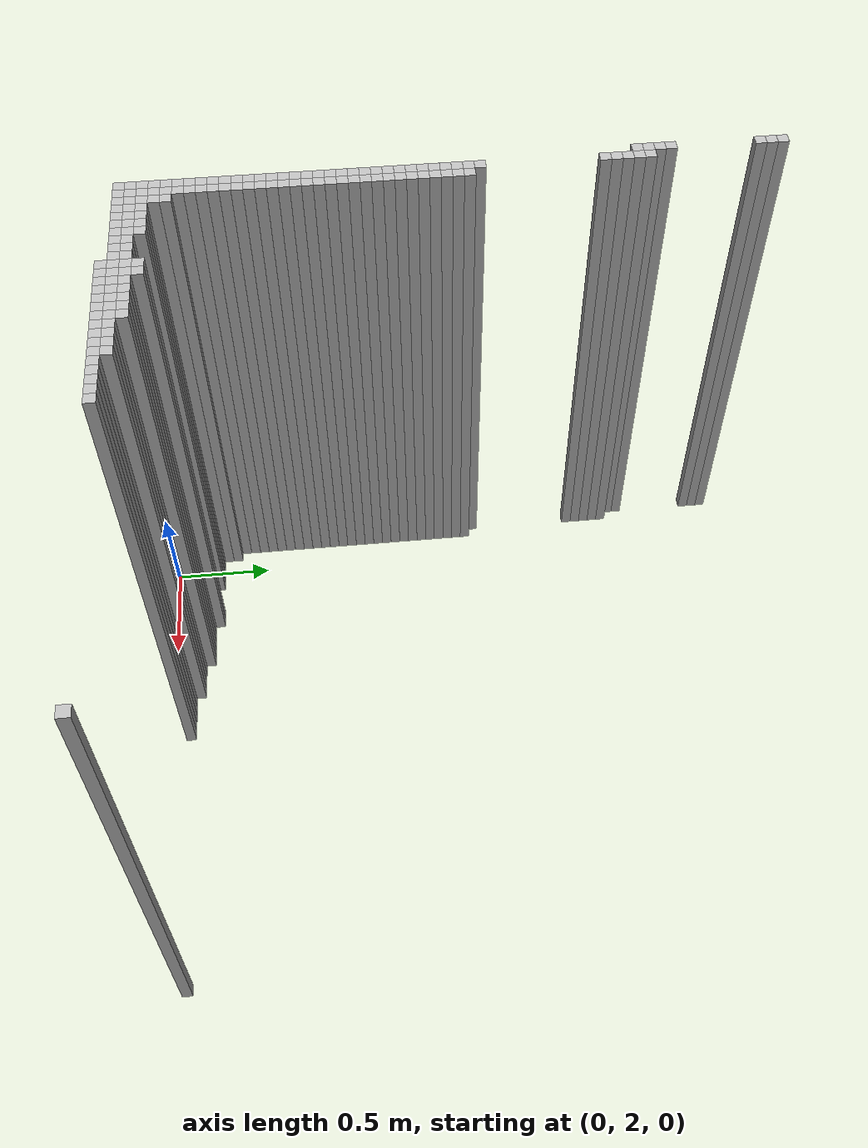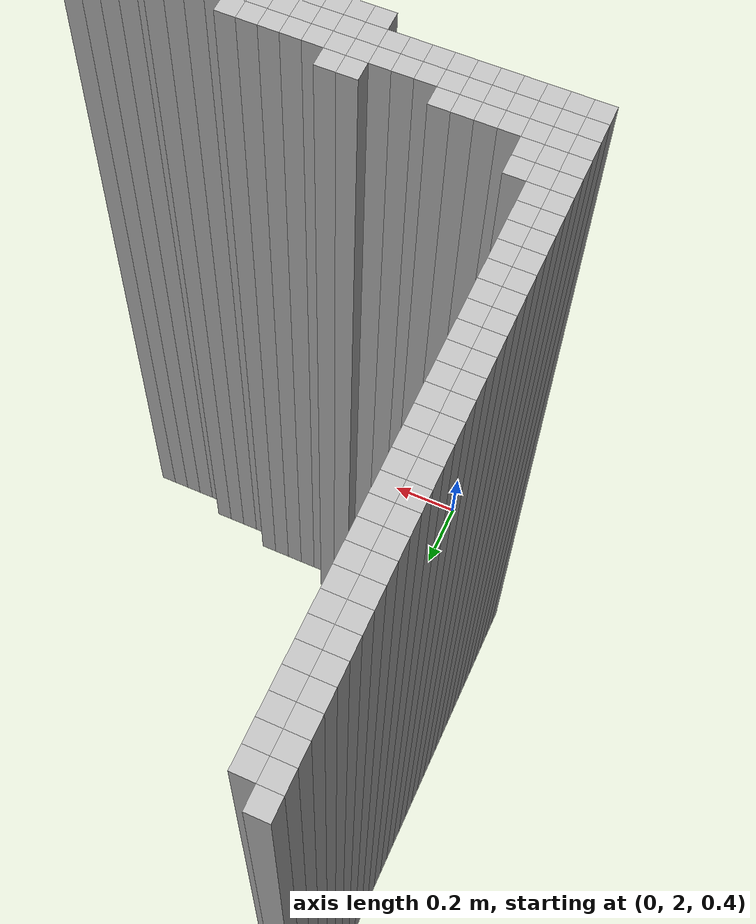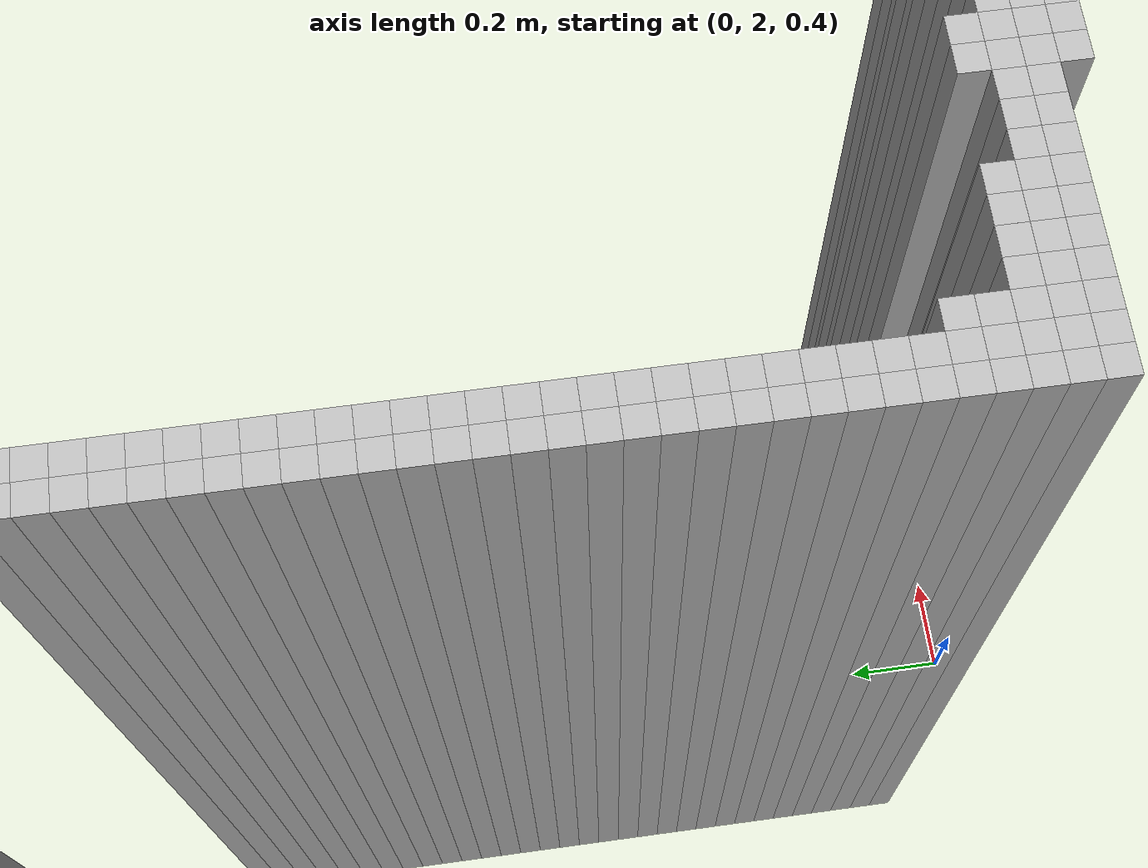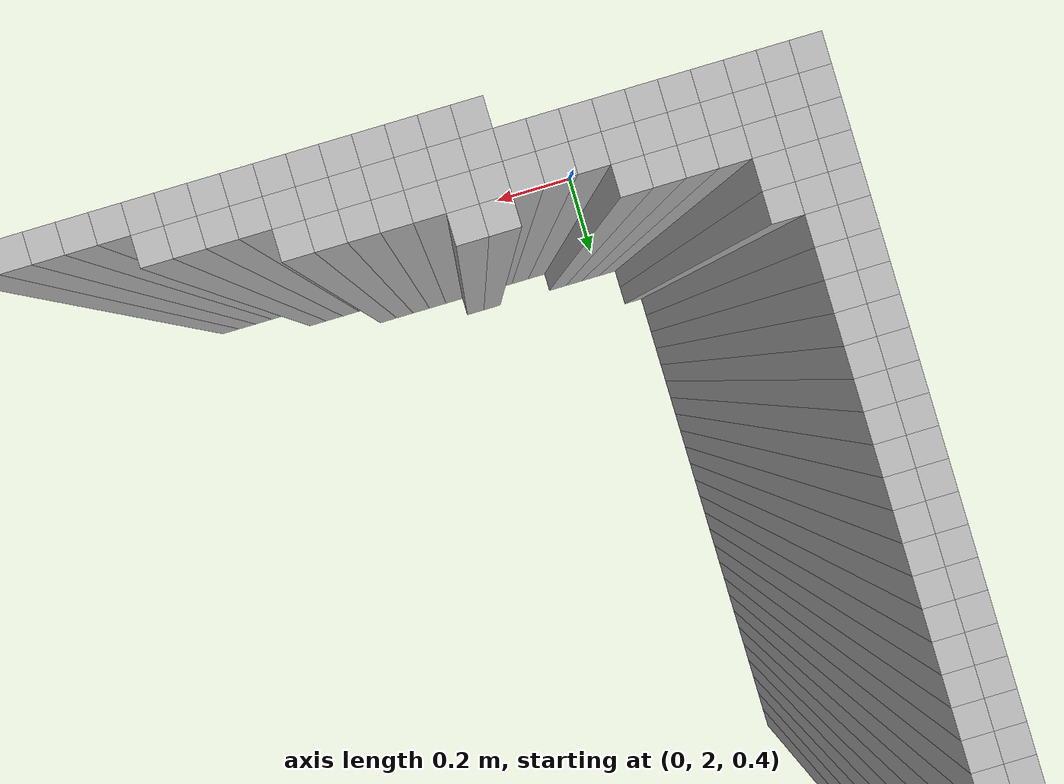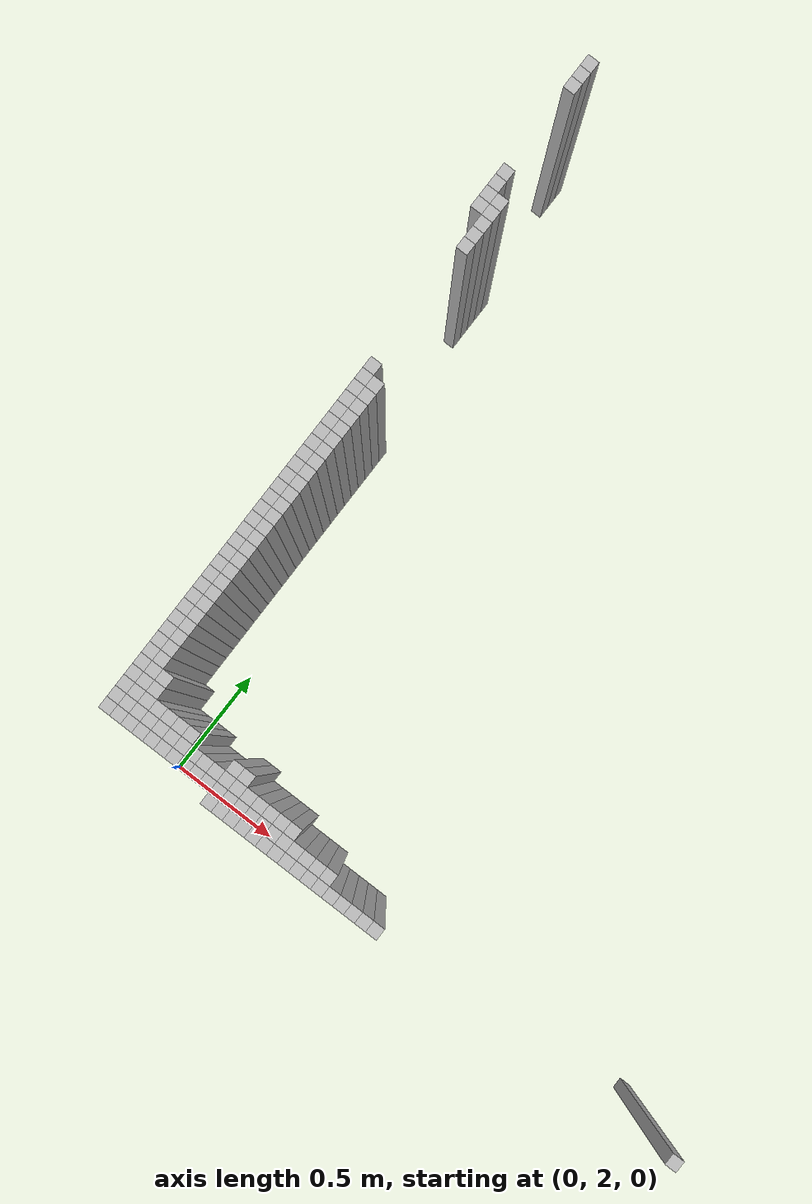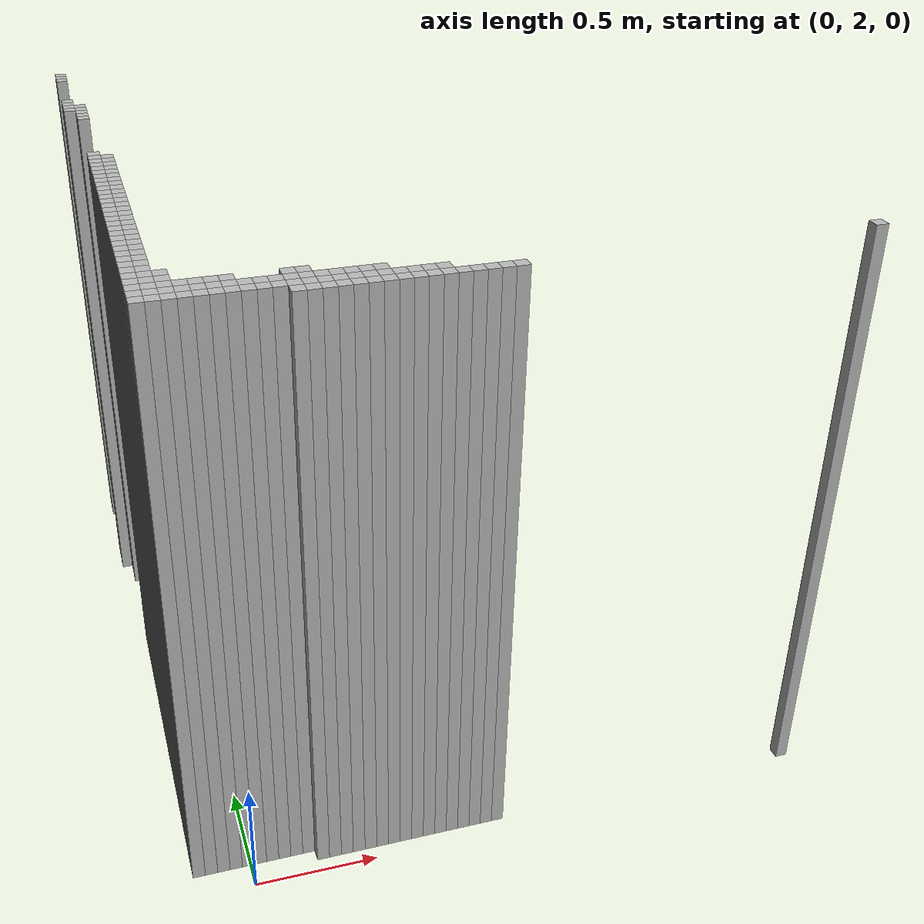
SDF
<sdf version="1.9">
 <world name="map_world">
  <model name="wall_218_53">
   <static>true</static>
   <pose>-0.261 5.030 1.250 0 0 0</pose>
   <link name="link">
    <collision name="collision"><geometry><box><size>0.050 0.050 2.500</size></box></geometry></collision>
    <visual name="visual"><geometry><box><size>0.050 0.050 2.500</size></box></geometry></visual>
   </link>
  </model>
  <model name="wall_218_54">
   <static>true</static>
   <pose>-0.261 4.980 1.250 0 0 0</pose>
   <link name="link">
    <collision name="collision"><geometry><box><size>0.050 0.050 2.500</size></box></geometry></collision>
    <visual name="visual"><geometry><box><size>0.050 0.050 2.500</size></box></geometry></visual>
   </link>
  </model>
  <model name="wall_218_55">
   <static>true</static>
   <pose>-0.261 4.930 1.250 0 0 0</pose>
   <link name="link">
    <collision name="collision"><geometry><box><size>0.050 0.050 2.500</size></box></geometry></collision>
    <visual name="visual"><geometry><box><size>0.050 0.050 2.500</size></box></geometry></visual>
   </link>
  </model>
  <model name="wall_218_63">
   <static>true</static>
   <pose>-0.261 4.530 1.250 0 0 0</pose>
   <link name="link">
    <collision name="collision"><geometry><box><size>0.050 0.050 2.500</size></box></geometry></collision>
    <visual name="visual"><geometry><box><size>0.050 0.050 2.500</size></box></geometry></visual>
   </link>
  </model>
  <model name="wall_218_64">
   <static>true</static>
   <pose>-0.261 4.480 1.250 0 0 0</pose>
   <link name="link">
    <collision name="collision"><geometry><box><size>0.050 0.050 2.500</size></box></geometry></collision>
    <visual name="visual"><geometry><box><size>0.050 0.050 2.500</size></box></geometry></visual>
   </link>
  </model>
  <model name="wall_218_65">
   <static>true</static>
   <pose>-0.261 4.430 1.250 0 0 0</pose>
   <link name="link">
    <collision name="collision"><geometry><box><size>0.050 0.050 2.500</size></box></geometry></collision>
    <visual name="visual"><geometry><box><size>0.050 0.050 2.500</size></box></geometry></visual>
   </link>
  </model>
  <model name="wall_219_65">
   <static>true</static>
   <pose>-0.211 4.430 1.250 0 0 0</pose>
   <link name="link">
    <collision name="collision"><geometry><box><size>0.050 0.050 2.500</size></box></geometry></collision>
    <visual name="visual"><geometry><box><size>0.050 0.050 2.500</size></box></geometry></visual>
   </link>
  </model>
  <model name="wall_218_66">
   <static>true</static>
   <pose>-0.261 4.380 1.250 0 0 0</pose>
   <link name="link">
    <collision name="collision"><geometry><box><size>0.050 0.050 2.500</size></box></geometry></collision>
    <visual name="visual"><geometry><box><size>0.050 0.050 2.500</size></box></geometry></visual>
   </link>
  </model>
  <model name="wall_219_66">
   <static>true</static>
   <pose>-0.211 4.380 1.250 0 0 0</pose>
   <link name="link">
    <collision name="collision"><geometry><box><size>0.050 0.050 2.500</size></box></geometry></collision>
    <visual name="visual"><geometry><box><size>0.050 0.050 2.500</size></box></geometry></visual>
   </link>
  </model>
  <model name="wall_219_67">
   <static>true</static>
   <pose>-0.211 4.330 1.250 0 0 0</pose>
   <link name="link">
    <collision name="collision"><geometry><box><size>0.050 0.050 2.500</size></box></geometry></collision>
    <visual name="visual"><geometry><box><size>0.050 0.050 2.500</size></box></geometry></visual>
   </link>
  </model>
  <model name="wall_219_68">
   <static>true</static>
   <pose>-0.211 4.280 1.250 0 0 0</pose>
   <link name="link">
    <collision name="collision"><geometry><box><size>0.050 0.050 2.500</size></box></geometry></collision>
    <visual name="visual"><geometry><box><size>0.050 0.050 2.500</size></box></geometry></visual>
   </link>
  </model>
  <model name="wall_219_69">
   <static>true</static>
   <pose>-0.211 4.230 1.250 0 0 0</pose>
   <link name="link">
    <collision name="collision"><geometry><box><size>0.050 0.050 2.500</size></box></geometry></collision>
    <visual name="visual"><geometry><box><size>0.050 0.050 2.500</size></box></geometry></visual>
   </link>
  </model>
  <model name="wall_219_80">
   <static>true</static>
   <pose>-0.211 3.680 1.250 0 0 0</pose>
   <link name="link">
    <collision name="collision"><geometry><box><size>0.050 0.050 2.500</size></box></geometry></collision>
    <visual name="visual"><geometry><box><size>0.050 0.050 2.500</size></box></geometry></visual>
   </link>
  </model>
  <model name="wall_219_81">
   <static>true</static>
   <pose>-0.211 3.630 1.250 0 0 0</pose>
   <link name="link">
    <collision name="collision"><geometry><box><size>0.050 0.050 2.500</size></box></geometry></collision>
    <visual name="visual"><geometry><box><size>0.050 0.050 2.500</size></box></geometry></visual>
   </link>
  </model>
  <model name="wall_220_81">
   <static>true</static>
   <pose>-0.161 3.630 1.250 0 0 0</pose>
   <link name="link">
    <collision name="collision"><geometry><box><size>0.050 0.050 2.500</size></box></geometry></collision>
    <visual name="visual"><geometry><box><size>0.050 0.050 2.500</size></box></geometry></visual>
   </link>
  </model>
  <model name="wall_219_82">
   <static>true</static>
   <pose>-0.211 3.580 1.250 0 0 0</pose>
   <link name="link">
    <collision name="collision"><geometry><box><size>0.050 0.050 2.500</size></box></geometry></collision>
    <visual name="visual"><geometry><box><size>0.050 0.050 2.500</size></box></geometry></visual>
   </link>
  </model>
  <model name="wall_220_82">
   <static>true</static>
   <pose>-0.161 3.580 1.250 0 0 0</pose>
   <link name="link">
    <collision name="collision"><geometry><box><size>0.050 0.050 2.500</size></box></geometry></collision>
    <visual name="visual"><geometry><box><size>0.050 0.050 2.500</size></box></geometry></visual>
   </link>
  </model>
  <model name="wall_219_83">
   <static>true</static>
   <pose>-0.211 3.530 1.250 0 0 0</pose>
   <link name="link">
    <collision name="collision"><geometry><box><size>0.050 0.050 2.500</size></box></geometry></collision>
    <visual name="visual"><geometry><box><size>0.050 0.050 2.500</size></box></geometry></visual>
   </link>
  </model>
  <model name="wall_220_83">
   <static>true</static>
   <pose>-0.161 3.530 1.250 0 0 0</pose>
   <link name="link">
    <collision name="collision"><geometry><box><size>0.050 0.050 2.500</size></box></geometry></collision>
    <visual name="visual"><geometry><box><size>0.050 0.050 2.500</size></box></geometry></visual>
   </link>
  </model>
  <model name="wall_219_84">
   <static>true</static>
   <pose>-0.211 3.480 1.250 0 0 0</pose>
   <link name="link">
    <collision name="collision"><geometry><box><size>0.050 0.050 2.500</size></box></geometry></collision>
    <visual name="visual"><geometry><box><size>0.050 0.050 2.500</size></box></geometry></visual>
   </link>
  </model>
  <model name="wall_220_84">
   <static>true</static>
   <pose>-0.161 3.480 1.250 0 0 0</pose>
   <link name="link">
    <collision name="collision"><geometry><box><size>0.050 0.050 2.500</size></box></geometry></collision>
    <visual name="visual"><geometry><box><size>0.050 0.050 2.500</size></box></geometry></visual>
   </link>
  </model>
  <model name="wall_219_85">
   <static>true</static>
   <pose>-0.211 3.430 1.250 0 0 0</pose>
   <link name="link">
    <collision name="collision"><geometry><box><size>0.050 0.050 2.500</size></box></geometry></collision>
    <visual name="visual"><geometry><box><size>0.050 0.050 2.500</size></box></geometry></visual>
   </link>
  </model>
  <model name="wall_220_85">
   <static>true</static>
   <pose>-0.161 3.430 1.250 0 0 0</pose>
   <link name="link">
    <collision name="collision"><geometry><box><size>0.050 0.050 2.500</size></box></geometry></collision>
    <visual name="visual"><geometry><box><size>0.050 0.050 2.500</size></box></geometry></visual>
   </link>
  </model>
  <model name="wall_219_86">
   <static>true</static>
   <pose>-0.211 3.380 1.250 0 0 0</pose>
   <link name="link">
    <collision name="collision"><geometry><box><size>0.050 0.050 2.500</size></box></geometry></collision>
    <visual name="visual"><geometry><box><size>0.050 0.050 2.500</size></box></geometry></visual>
   </link>
  </model>
  <model name="wall_220_86">
   <static>true</static>
   <pose>-0.161 3.380 1.250 0 0 0</pose>
   <link name="link">
    <collision name="collision"><geometry><box><size>0.050 0.050 2.500</size></box></geometry></collision>
    <visual name="visual"><geometry><box><size>0.050 0.050 2.500</size></box></geometry></visual>
   </link>
  </model>
  <model name="wall_219_87">
   <static>true</static>
   <pose>-0.211 3.330 1.250 0 0 0</pose>
   <link name="link">
    <collision name="collision"><geometry><box><size>0.050 0.050 2.500</size></box></geometry></collision>
    <visual name="visual"><geometry><box><size>0.050 0.050 2.500</size></box></geometry></visual>
   </link>
  </model>
  <model name="wall_220_87">
   <static>true</static>
   <pose>-0.161 3.330 1.250 0 0 0</pose>
   <link name="link">
    <collision name="collision"><geometry><box><size>0.050 0.050 2.500</size></box></geometry></collision>
    <visual name="visual"><geometry><box><size>0.050 0.050 2.500</size></box></geometry></visual>
   </link>
  </model>
  <model name="wall_219_88">
   <static>true</static>
   <pose>-0.211 3.280 1.250 0 0 0</pose>
   <link name="link">
    <collision name="collision"><geometry><box><size>0.050 0.050 2.500</size></box></geometry></collision>
    <visual name="visual"><geometry><box><size>0.050 0.050 2.500</size></box></geometry></visual>
   </link>
  </model>
  <model name="wall_220_88">
   <static>true</static>
   <pose>-0.161 3.280 1.250 0 0 0</pose>
   <link name="link">
    <collision name="collision"><geometry><box><size>0.050 0.050 2.500</size></box></geometry></collision>
    <visual name="visual"><geometry><box><size>0.050 0.050 2.500</size></box></geometry></visual>
   </link>
  </model>
  <model name="wall_219_89">
   <static>true</static>
   <pose>-0.211 3.230 1.250 0 0 0</pose>
   <link name="link">
    <collision name="collision"><geometry><box><size>0.050 0.050 2.500</size></box></geometry></collision>
    <visual name="visual"><geometry><box><size>0.050 0.050 2.500</size></box></geometry></visual>
   </link>
  </model>
  <model name="wall_220_89">
   <static>true</static>
   <pose>-0.161 3.230 1.250 0 0 0</pose>
   <link name="link">
    <collision name="collision"><geometry><box><size>0.050 0.050 2.500</size></box></geometry></collision>
    <visual name="visual"><geometry><box><size>0.050 0.050 2.500</size></box></geometry></visual>
   </link>
  </model>
  <model name="wall_219_90">
   <static>true</static>
   <pose>-0.211 3.180 1.250 0 0 0</pose>
   <link name="link">
    <collision name="collision"><geometry><box><size>0.050 0.050 2.500</size></box></geometry></collision>
    <visual name="visual"><geometry><box><size>0.050 0.050 2.500</size></box></geometry></visual>
   </link>
  </model>
  <model name="wall_220_90">
   <static>true</static>
   <pose>-0.161 3.180 1.250 0 0 0</pose>
   <link name="link">
    <collision name="collision"><geometry><box><size>0.050 0.050 2.500</size></box></geometry></collision>
    <visual name="visual"><geometry><box><size>0.050 0.050 2.500</size></box></geometry></visual>
   </link>
  </model>
  <model name="wall_219_91">
   <static>true</static>
   <pose>-0.211 3.130 1.250 0 0 0</pose>
   <link name="link">
    <collision name="collision"><geometry><box><size>0.050 0.050 2.500</size></box></geometry></collision>
    <visual name="visual"><geometry><box><size>0.050 0.050 2.500</size></box></geometry></visual>
   </link>
  </model>
  <model name="wall_220_91">
   <static>true</static>
   <pose>-0.161 3.130 1.250 0 0 0</pose>
   <link name="link">
    <collision name="collision"><geometry><box><size>0.050 0.050 2.500</size></box></geometry></collision>
    <visual name="visual"><geometry><box><size>0.050 0.050 2.500</size></box></geometry></visual>
   </link>
  </model>
  <model name="wall_219_92">
   <static>true</static>
   <pose>-0.211 3.080 1.250 0 0 0</pose>
   <link name="link">
    <collision name="collision"><geometry><box><size>0.050 0.050 2.500</size></box></geometry></collision>
    <visual name="visual"><geometry><box><size>0.050 0.050 2.500</size></box></geometry></visual>
   </link>
  </model>
  <model name="wall_220_92">
   <static>true</static>
   <pose>-0.161 3.080 1.250 0 0 0</pose>
   <link name="link">
    <collision name="collision"><geometry><box><size>0.050 0.050 2.500</size></box></geometry></collision>
    <visual name="visual"><geometry><box><size>0.050 0.050 2.500</size></box></geometry></visual>
   </link>
  </model>
  <model name="wall_219_93">
   <static>true</static>
   <pose>-0.211 3.030 1.250 0 0 0</pose>
   <link name="link">
    <collision name="collision"><geometry><box><size>0.050 0.050 2.500</size></box></geometry></collision>
    <visual name="visual"><geometry><box><size>0.050 0.050 2.500</size></box></geometry></visual>
   </link>
  </model>
  <model name="wall_220_93">
   <static>true</static>
   <pose>-0.161 3.030 1.250 0 0 0</pose>
   <link name="link">
    <collision name="collision"><geometry><box><size>0.050 0.050 2.500</size></box></geometry></collision>
    <visual name="visual"><geometry><box><size>0.050 0.050 2.500</size></box></geometry></visual>
   </link>
  </model>
  <model name="wall_219_94">
   <static>true</static>
   <pose>-0.211 2.980 1.250 0 0 0</pose>
   <link name="link">
    <collision name="collision"><geometry><box><size>0.050 0.050 2.500</size></box></geometry></collision>
    <visual name="visual"><geometry><box><size>0.050 0.050 2.500</size></box></geometry></visual>
   </link>
  </model>
  <model name="wall_220_94">
   <static>true</static>
   <pose>-0.161 2.980 1.250 0 0 0</pose>
   <link name="link">
    <collision name="collision"><geometry><box><size>0.050 0.050 2.500</size></box></geometry></collision>
    <visual name="visual"><geometry><box><size>0.050 0.050 2.500</size></box></geometry></visual>
   </link>
  </model>
  <model name="wall_219_95">
   <static>true</static>
   <pose>-0.211 2.930 1.250 0 0 0</pose>
   <link name="link">
    <collision name="collision"><geometry><box><size>0.050 0.050 2.500</size></box></geometry></collision>
    <visual name="visual"><geometry><box><size>0.050 0.050 2.500</size></box></geometry></visual>
   </link>
  </model>
  <model name="wall_220_95">
   <static>true</static>
   <pose>-0.161 2.930 1.250 0 0 0</pose>
   <link name="link">
    <collision name="collision"><geometry><box><size>0.050 0.050 2.500</size></box></geometry></collision>
    <visual name="visual"><geometry><box><size>0.050 0.050 2.500</size></box></geometry></visual>
   </link>
  </model>
  <model name="wall_219_96">
   <static>true</static>
   <pose>-0.211 2.880 1.250 0 0 0</pose>
   <link name="link">
    <collision name="collision"><geometry><box><size>0.050 0.050 2.500</size></box></geometry></collision>
    <visual name="visual"><geometry><box><size>0.050 0.050 2.500</size></box></geometry></visual>
   </link>
  </model>
  <model name="wall_220_96">
   <static>true</static>
   <pose>-0.161 2.880 1.250 0 0 0</pose>
   <link name="link">
    <collision name="collision"><geometry><box><size>0.050 0.050 2.500</size></box></geometry></collision>
    <visual name="visual"><geometry><box><size>0.050 0.050 2.500</size></box></geometry></visual>
   </link>
  </model>
  <model name="wall_219_97">
   <static>true</static>
   <pose>-0.211 2.830 1.250 0 0 0</pose>
   <link name="link">
    <collision name="collision"><geometry><box><size>0.050 0.050 2.500</size></box></geometry></collision>
    <visual name="visual"><geometry><box><size>0.050 0.050 2.500</size></box></geometry></visual>
   </link>
  </model>
  <model name="wall_220_97">
   <static>true</static>
   <pose>-0.161 2.830 1.250 0 0 0</pose>
   <link name="link">
    <collision name="collision"><geometry><box><size>0.050 0.050 2.500</size></box></geometry></collision>
    <visual name="visual"><geometry><box><size>0.050 0.050 2.500</size></box></geometry></visual>
   </link>
  </model>
  <model name="wall_219_98">
   <static>true</static>
   <pose>-0.211 2.780 1.250 0 0 0</pose>
   <link name="link">
    <collision name="collision"><geometry><box><size>0.050 0.050 2.500</size></box></geometry></collision>
    <visual name="visual"><geometry><box><size>0.050 0.050 2.500</size></box></geometry></visual>
   </link>
  </model>
  <model name="wall_220_98">
   <static>true</static>
   <pose>-0.161 2.780 1.250 0 0 0</pose>
   <link name="link">
    <collision name="collision"><geometry><box><size>0.050 0.050 2.500</size></box></geometry></collision>
    <visual name="visual"><geometry><box><size>0.050 0.050 2.500</size></box></geometry></visual>
   </link>
  </model>
  <model name="wall_219_99">
   <static>true</static>
   <pose>-0.211 2.730 1.250 0 0 0</pose>
   <link name="link">
    <collision name="collision"><geometry><box><size>0.050 0.050 2.500</size></box></geometry></collision>
    <visual name="visual"><geometry><box><size>0.050 0.050 2.500</size></box></geometry></visual>
   </link>
  </model>
  <model name="wall_220_99">
   <static>true</static>
   <pose>-0.161 2.730 1.250 0 0 0</pose>
   <link name="link">
    <collision name="collision"><geometry><box><size>0.050 0.050 2.500</size></box></geometry></collision>
    <visual name="visual"><geometry><box><size>0.050 0.050 2.500</size></box></geometry></visual>
   </link>
  </model>
  <model name="wall_219_100">
   <static>true</static>
   <pose>-0.211 2.680 1.250 0 0 0</pose>
   <link name="link">
    <collision name="collision"><geometry><box><size>0.050 0.050 2.500</size></box></geometry></collision>
    <visual name="visual"><geometry><box><size>0.050 0.050 2.500</size></box></geometry></visual>
   </link>
  </model>
  <model name="wall_220_100">
   <static>true</static>
   <pose>-0.161 2.680 1.250 0 0 0</pose>
   <link name="link">
    <collision name="collision"><geometry><box><size>0.050 0.050 2.500</size></box></geometry></collision>
    <visual name="visual"><geometry><box><size>0.050 0.050 2.500</size></box></geometry></visual>
   </link>
  </model>
  <model name="wall_219_101">
   <static>true</static>
   <pose>-0.211 2.630 1.250 0 0 0</pose>
   <link name="link">
    <collision name="collision"><geometry><box><size>0.050 0.050 2.500</size></box></geometry></collision>
    <visual name="visual"><geometry><box><size>0.050 0.050 2.500</size></box></geometry></visual>
   </link>
  </model>
  <model name="wall_220_101">
   <static>true</static>
   <pose>-0.161 2.630 1.250 0 0 0</pose>
   <link name="link">
    <collision name="collision"><geometry><box><size>0.050 0.050 2.500</size></box></geometry></collision>
    <visual name="visual"><geometry><box><size>0.050 0.050 2.500</size></box></geometry></visual>
   </link>
  </model>
  <model name="wall_219_102">
   <static>true</static>
   <pose>-0.211 2.580 1.250 0 0 0</pose>
   <link name="link">
    <collision name="collision"><geometry><box><size>0.050 0.050 2.500</size></box></geometry></collision>
    <visual name="visual"><geometry><box><size>0.050 0.050 2.500</size></box></geometry></visual>
   </link>
  </model>
  <model name="wall_220_102">
   <static>true</static>
   <pose>-0.161 2.580 1.250 0 0 0</pose>
   <link name="link">
    <collision name="collision"><geometry><box><size>0.050 0.050 2.500</size></box></geometry></collision>
    <visual name="visual"><geometry><box><size>0.050 0.050 2.500</size></box></geometry></visual>
   </link>
  </model>
  <model name="wall_219_103">
   <static>true</static>
   <pose>-0.211 2.530 1.250 0 0 0</pose>
   <link name="link">
    <collision name="collision"><geometry><box><size>0.050 0.050 2.500</size></box></geometry></collision>
    <visual name="visual"><geometry><box><size>0.050 0.050 2.500</size></box></geometry></visual>
   </link>
  </model>
  <model name="wall_220_103">
   <static>true</static>
   <pose>-0.161 2.530 1.250 0 0 0</pose>
   <link name="link">
    <collision name="collision"><geometry><box><size>0.050 0.050 2.500</size></box></geometry></collision>
    <visual name="visual"><geometry><box><size>0.050 0.050 2.500</size></box></geometry></visual>
   </link>
  </model>
  <model name="wall_219_104">
   <static>true</static>
   <pose>-0.211 2.480 1.250 0 0 0</pose>
   <link name="link">
    <collision name="collision"><geometry><box><size>0.050 0.050 2.500</size></box></geometry></collision>
    <visual name="visual"><geometry><box><size>0.050 0.050 2.500</size></box></geometry></visual>
   </link>
  </model>
  <model name="wall_220_104">
   <static>true</static>
   <pose>-0.161 2.480 1.250 0 0 0</pose>
   <link name="link">
    <collision name="collision"><geometry><box><size>0.050 0.050 2.500</size></box></geometry></collision>
    <visual name="visual"><geometry><box><size>0.050 0.050 2.500</size></box></geometry></visual>
   </link>
  </model>
  <model name="wall_219_105">
   <static>true</static>
   <pose>-0.211 2.430 1.250 0 0 0</pose>
   <link name="link">
    <collision name="collision"><geometry><box><size>0.050 0.050 2.500</size></box></geometry></collision>
    <visual name="visual"><geometry><box><size>0.050 0.050 2.500</size></box></geometry></visual>
   </link>
  </model>
  <model name="wall_220_105">
   <static>true</static>
   <pose>-0.161 2.430 1.250 0 0 0</pose>
   <link name="link">
    <collision name="collision"><geometry><box><size>0.050 0.050 2.500</size></box></geometry></collision>
    <visual name="visual"><geometry><box><size>0.050 0.050 2.500</size></box></geometry></visual>
   </link>
  </model>
  <model name="wall_219_106">
   <static>true</static>
   <pose>-0.211 2.380 1.250 0 0 0</pose>
   <link name="link">
    <collision name="collision"><geometry><box><size>0.050 0.050 2.500</size></box></geometry></collision>
    <visual name="visual"><geometry><box><size>0.050 0.050 2.500</size></box></geometry></visual>
   </link>
  </model>
  <model name="wall_220_106">
   <static>true</static>
   <pose>-0.161 2.380 1.250 0 0 0</pose>
   <link name="link">
    <collision name="collision"><geometry><box><size>0.050 0.050 2.500</size></box></geometry></collision>
    <visual name="visual"><geometry><box><size>0.050 0.050 2.500</size></box></geometry></visual>
   </link>
  </model>
  <model name="wall_219_107">
   <static>true</static>
   <pose>-0.211 2.330 1.250 0 0 0</pose>
   <link name="link">
    <collision name="collision"><geometry><box><size>0.050 0.050 2.500</size></box></geometry></collision>
    <visual name="visual"><geometry><box><size>0.050 0.050 2.500</size></box></geometry></visual>
   </link>
  </model>
  <model name="wall_220_107">
   <static>true</static>
   <pose>-0.161 2.330 1.250 0 0 0</pose>
   <link name="link">
    <collision name="collision"><geometry><box><size>0.050 0.050 2.500</size></box></geometry></collision>
    <visual name="visual"><geometry><box><size>0.050 0.050 2.500</size></box></geometry></visual>
   </link>
  </model>
  <model name="wall_221_107">
   <static>true</static>
   <pose>-0.111 2.330 1.250 0 0 0</pose>
   <link name="link">
    <collision name="collision"><geometry><box><size>0.050 0.050 2.500</size></box></geometry></collision>
    <visual name="visual"><geometry><box><size>0.050 0.050 2.500</size></box></geometry></visual>
   </link>
  </model>
  <model name="wall_219_108">
   <static>true</static>
   <pose>-0.211 2.280 1.250 0 0 0</pose>
   <link name="link">
    <collision name="collision"><geometry><box><size>0.050 0.050 2.500</size></box></geometry></collision>
    <visual name="visual"><geometry><box><size>0.050 0.050 2.500</size></box></geometry></visual>
   </link>
  </model>
  <model name="wall_220_108">
   <static>true</static>
   <pose>-0.161 2.280 1.250 0 0 0</pose>
   <link name="link">
    <collision name="collision"><geometry><box><size>0.050 0.050 2.500</size></box></geometry></collision>
    <visual name="visual"><geometry><box><size>0.050 0.050 2.500</size></box></geometry></visual>
   </link>
  </model>
  <model name="wall_221_108">
   <static>true</static>
   <pose>-0.111 2.280 1.250 0 0 0</pose>
   <link name="link">
    <collision name="collision"><geometry><box><size>0.050 0.050 2.500</size></box></geometry></collision>
    <visual name="visual"><geometry><box><size>0.050 0.050 2.500</size></box></geometry></visual>
   </link>
  </model>
  <model name="wall_219_109">
   <static>true</static>
   <pose>-0.211 2.230 1.250 0 0 0</pose>
   <link name="link">
    <collision name="collision"><geometry><box><size>0.050 0.050 2.500</size></box></geometry></collision>
    <visual name="visual"><geometry><box><size>0.050 0.050 2.500</size></box></geometry></visual>
   </link>
  </model>
  <model name="wall_220_109">
   <static>true</static>
   <pose>-0.161 2.230 1.250 0 0 0</pose>
   <link name="link">
    <collision name="collision"><geometry><box><size>0.050 0.050 2.500</size></box></geometry></collision>
    <visual name="visual"><geometry><box><size>0.050 0.050 2.500</size></box></geometry></visual>
   </link>
  </model>
  <model name="wall_221_109">
   <static>true</static>
   <pose>-0.111 2.230 1.250 0 0 0</pose>
   <link name="link">
    <collision name="collision"><geometry><box><size>0.050 0.050 2.500</size></box></geometry></collision>
    <visual name="visual"><geometry><box><size>0.050 0.050 2.500</size></box></geometry></visual>
   </link>
  </model>
  <model name="wall_222_109">
   <static>true</static>
   <pose>-0.061 2.230 1.250 0 0 0</pose>
   <link name="link">
    <collision name="collision"><geometry><box><size>0.050 0.050 2.500</size></box></geometry></collision>
    <visual name="visual"><geometry><box><size>0.050 0.050 2.500</size></box></geometry></visual>
   </link>
  </model>
  <model name="wall_223_109">
   <static>true</static>
   <pose>-0.011 2.230 1.250 0 0 0</pose>
   <link name="link">
    <collision name="collision"><geometry><box><size>0.050 0.050 2.500</size></box></geometry></collision>
    <visual name="visual"><geometry><box><size>0.050 0.050 2.500</size></box></geometry></visual>
   </link>
  </model>
  <model name="wall_224_109">
   <static>true</static>
   <pose>0.039 2.230 1.250 0 0 0</pose>
   <link name="link">
    <collision name="collision"><geometry><box><size>0.050 0.050 2.500</size></box></geometry></collision>
    <visual name="visual"><geometry><box><size>0.050 0.050 2.500</size></box></geometry></visual>
   </link>
  </model>
  <model name="wall_225_109">
   <static>true</static>
   <pose>0.089 2.230 1.250 0 0 0</pose>
   <link name="link">
    <collision name="collision"><geometry><box><size>0.050 0.050 2.500</size></box></geometry></collision>
    <visual name="visual"><geometry><box><size>0.050 0.050 2.500</size></box></geometry></visual>
   </link>
  </model>
  <model name="wall_229_109">
   <static>true</static>
   <pose>0.289 2.230 1.250 0 0 0</pose>
   <link name="link">
    <collision name="collision"><geometry><box><size>0.050 0.050 2.500</size></box></geometry></collision>
    <visual name="visual"><geometry><box><size>0.050 0.050 2.500</size></box></geometry></visual>
   </link>
  </model>
  <model name="wall_230_109">
   <static>true</static>
   <pose>0.339 2.230 1.250 0 0 0</pose>
   <link name="link">
    <collision name="collision"><geometry><box><size>0.050 0.050 2.500</size></box></geometry></collision>
    <visual name="visual"><geometry><box><size>0.050 0.050 2.500</size></box></geometry></visual>
   </link>
  </model>
  <model name="wall_219_110">
   <static>true</static>
   <pose>-0.211 2.180 1.250 0 0 0</pose>
   <link name="link">
    <collision name="collision"><geometry><box><size>0.050 0.050 2.500</size></box></geometry></collision>
    <visual name="visual"><geometry><box><size>0.050 0.050 2.500</size></box></geometry></visual>
   </link>
  </model>
  <model name="wall_220_110">
   <static>true</static>
   <pose>-0.161 2.180 1.250 0 0 0</pose>
   <link name="link">
    <collision name="collision"><geometry><box><size>0.050 0.050 2.500</size></box></geometry></collision>
    <visual name="visual"><geometry><box><size>0.050 0.050 2.500</size></box></geometry></visual>
   </link>
  </model>
  <model name="wall_221_110">
   <static>true</static>
   <pose>-0.111 2.180 1.250 0 0 0</pose>
   <link name="link">
    <collision name="collision"><geometry><box><size>0.050 0.050 2.500</size></box></geometry></collision>
    <visual name="visual"><geometry><box><size>0.050 0.050 2.500</size></box></geometry></visual>
   </link>
  </model>
  <model name="wall_222_110">
   <static>true</static>
   <pose>-0.061 2.180 1.250 0 0 0</pose>
   <link name="link">
    <collision name="collision"><geometry><box><size>0.050 0.050 2.500</size></box></geometry></collision>
    <visual name="visual"><geometry><box><size>0.050 0.050 2.500</size></box></geometry></visual>
   </link>
  </model>
  <model name="wall_223_110">
   <static>true</static>
   <pose>-0.011 2.180 1.250 0 0 0</pose>
   <link name="link">
    <collision name="collision"><geometry><box><size>0.050 0.050 2.500</size></box></geometry></collision>
    <visual name="visual"><geometry><box><size>0.050 0.050 2.500</size></box></geometry></visual>
   </link>
  </model>
  <model name="wall_224_110">
   <static>true</static>
   <pose>0.039 2.180 1.250 0 0 0</pose>
   <link name="link">
    <collision name="collision"><geometry><box><size>0.050 0.050 2.500</size></box></geometry></collision>
    <visual name="visual"><geometry><box><size>0.050 0.050 2.500</size></box></geometry></visual>
   </link>
  </model>
  <model name="wall_225_110">
   <static>true</static>
   <pose>0.089 2.180 1.250 0 0 0</pose>
   <link name="link">
    <collision name="collision"><geometry><box><size>0.050 0.050 2.500</size></box></geometry></collision>
    <visual name="visual"><geometry><box><size>0.050 0.050 2.500</size></box></geometry></visual>
   </link>
  </model>
  <model name="wall_226_110">
   <static>true</static>
   <pose>0.139 2.180 1.250 0 0 0</pose>
   <link name="link">
    <collision name="collision"><geometry><box><size>0.050 0.050 2.500</size></box></geometry></collision>
    <visual name="visual"><geometry><box><size>0.050 0.050 2.500</size></box></geometry></visual>
   </link>
  </model>
  <model name="wall_227_110">
   <static>true</static>
   <pose>0.189 2.180 1.250 0 0 0</pose>
   <link name="link">
    <collision name="collision"><geometry><box><size>0.050 0.050 2.500</size></box></geometry></collision>
    <visual name="visual"><geometry><box><size>0.050 0.050 2.500</size></box></geometry></visual>
   </link>
  </model>
  <model name="wall_228_110">
   <static>true</static>
   <pose>0.239 2.180 1.250 0 0 0</pose>
   <link name="link">
    <collision name="collision"><geometry><box><size>0.050 0.050 2.500</size></box></geometry></collision>
    <visual name="visual"><geometry><box><size>0.050 0.050 2.500</size></box></geometry></visual>
   </link>
  </model>
  <model name="wall_229_110">
   <static>true</static>
   <pose>0.289 2.180 1.250 0 0 0</pose>
   <link name="link">
    <collision name="collision"><geometry><box><size>0.050 0.050 2.500</size></box></geometry></collision>
    <visual name="visual"><geometry><box><size>0.050 0.050 2.500</size></box></geometry></visual>
   </link>
  </model>
  <model name="wall_230_110">
   <static>true</static>
   <pose>0.339 2.180 1.250 0 0 0</pose>
   <link name="link">
    <collision name="collision"><geometry><box><size>0.050 0.050 2.500</size></box></geometry></collision>
    <visual name="visual"><geometry><box><size>0.050 0.050 2.500</size></box></geometry></visual>
   </link>
  </model>
  <model name="wall_231_110">
   <static>true</static>
   <pose>0.389 2.180 1.250 0 0 0</pose>
   <link name="link">
    <collision name="collision"><geometry><box><size>0.050 0.050 2.500</size></box></geometry></collision>
    <visual name="visual"><geometry><box><size>0.050 0.050 2.500</size></box></geometry></visual>
   </link>
  </model>
  <model name="wall_232_110">
   <static>true</static>
   <pose>0.439 2.180 1.250 0 0 0</pose>
   <link name="link">
    <collision name="collision"><geometry><box><size>0.050 0.050 2.500</size></box></geometry></collision>
    <visual name="visual"><geometry><box><size>0.050 0.050 2.500</size></box></geometry></visual>
   </link>
  </model>
  <model name="wall_233_110">
   <static>true</static>
   <pose>0.489 2.180 1.250 0 0 0</pose>
   <link name="link">
    <collision name="collision"><geometry><box><size>0.050 0.050 2.500</size></box></geometry></collision>
    <visual name="visual"><geometry><box><size>0.050 0.050 2.500</size></box></geometry></visual>
   </link>
  </model>
  <model name="wall_234_110">
   <static>true</static>
   <pose>0.539 2.180 1.250 0 0 0</pose>
   <link name="link">
    <collision name="collision"><geometry><box><size>0.050 0.050 2.500</size></box></geometry></collision>
    <visual name="visual"><geometry><box><size>0.050 0.050 2.500</size></box></geometry></visual>
   </link>
  </model>
  <model name="wall_235_110">
   <static>true</static>
   <pose>0.589 2.180 1.250 0 0 0</pose>
   <link name="link">
    <collision name="collision"><geometry><box><size>0.050 0.050 2.500</size></box></geometry></collision>
    <visual name="visual"><geometry><box><size>0.050 0.050 2.500</size></box></geometry></visual>
   </link>
  </model>
  <model name="wall_219_111">
   <static>true</static>
   <pose>-0.211 2.130 1.250 0 0 0</pose>
   <link name="link">
    <collision name="collision"><geometry><box><size>0.050 0.050 2.500</size></box></geometry></collision>
    <visual name="visual"><geometry><box><size>0.050 0.050 2.500</size></box></geometry></visual>
   </link>
  </model>
  <model name="wall_220_111">
   <static>true</static>
   <pose>-0.161 2.130 1.250 0 0 0</pose>
   <link name="link">
    <collision name="collision"><geometry><box><size>0.050 0.050 2.500</size></box></geometry></collision>
    <visual name="visual"><geometry><box><size>0.050 0.050 2.500</size></box></geometry></visual>
   </link>
  </model>
  <model name="wall_221_111">
   <static>true</static>
   <pose>-0.111 2.130 1.250 0 0 0</pose>
   <link name="link">
    <collision name="collision"><geometry><box><size>0.050 0.050 2.500</size></box></geometry></collision>
    <visual name="visual"><geometry><box><size>0.050 0.050 2.500</size></box></geometry></visual>
   </link>
  </model>
  <model name="wall_222_111">
   <static>true</static>
   <pose>-0.061 2.130 1.250 0 0 0</pose>
   <link name="link">
    <collision name="collision"><geometry><box><size>0.050 0.050 2.500</size></box></geometry></collision>
    <visual name="visual"><geometry><box><size>0.050 0.050 2.500</size></box></geometry></visual>
   </link>
  </model>
  <model name="wall_223_111">
   <static>true</static>
   <pose>-0.011 2.130 1.250 0 0 0</pose>
   <link name="link">
    <collision name="collision"><geometry><box><size>0.050 0.050 2.500</size></box></geometry></collision>
    <visual name="visual"><geometry><box><size>0.050 0.050 2.500</size></box></geometry></visual>
   </link>
  </model>
  <model name="wall_224_111">
   <static>true</static>
   <pose>0.039 2.130 1.250 0 0 0</pose>
   <link name="link">
    <collision name="collision"><geometry><box><size>0.050 0.050 2.500</size></box></geometry></collision>
    <visual name="visual"><geometry><box><size>0.050 0.050 2.500</size></box></geometry></visual>
   </link>
  </model>
  <model name="wall_225_111">
   <static>true</static>
   <pose>0.089 2.130 1.250 0 0 0</pose>
   <link name="link">
    <collision name="collision"><geometry><box><size>0.050 0.050 2.500</size></box></geometry></collision>
    <visual name="visual"><geometry><box><size>0.050 0.050 2.500</size></box></geometry></visual>
   </link>
  </model>
  <model name="wall_226_111">
   <static>true</static>
   <pose>0.139 2.130 1.250 0 0 0</pose>
   <link name="link">
    <collision name="collision"><geometry><box><size>0.050 0.050 2.500</size></box></geometry></collision>
    <visual name="visual"><geometry><box><size>0.050 0.050 2.500</size></box></geometry></visual>
   </link>
  </model>
  <model name="wall_227_111">
   <static>true</static>
   <pose>0.189 2.130 1.250 0 0 0</pose>
   <link name="link">
    <collision name="collision"><geometry><box><size>0.050 0.050 2.500</size></box></geometry></collision>
    <visual name="visual"><geometry><box><size>0.050 0.050 2.500</size></box></geometry></visual>
   </link>
  </model>
  <model name="wall_228_111">
   <static>true</static>
   <pose>0.239 2.130 1.250 0 0 0</pose>
   <link name="link">
    <collision name="collision"><geometry><box><size>0.050 0.050 2.500</size></box></geometry></collision>
    <visual name="visual"><geometry><box><size>0.050 0.050 2.500</size></box></geometry></visual>
   </link>
  </model>
  <model name="wall_229_111">
   <static>true</static>
   <pose>0.289 2.130 1.250 0 0 0</pose>
   <link name="link">
    <collision name="collision"><geometry><box><size>0.050 0.050 2.500</size></box></geometry></collision>
    <visual name="visual"><geometry><box><size>0.050 0.050 2.500</size></box></geometry></visual>
   </link>
  </model>
  <model name="wall_230_111">
   <static>true</static>
   <pose>0.339 2.130 1.250 0 0 0</pose>
   <link name="link">
    <collision name="collision"><geometry><box><size>0.050 0.050 2.500</size></box></geometry></collision>
    <visual name="visual"><geometry><box><size>0.050 0.050 2.500</size></box></geometry></visual>
   </link>
  </model>
  <model name="wall_231_111">
   <static>true</static>
   <pose>0.389 2.130 1.250 0 0 0</pose>
   <link name="link">
    <collision name="collision"><geometry><box><size>0.050 0.050 2.500</size></box></geometry></collision>
    <visual name="visual"><geometry><box><size>0.050 0.050 2.500</size></box></geometry></visual>
   </link>
  </model>
  <model name="wall_232_111">
   <static>true</static>
   <pose>0.439 2.130 1.250 0 0 0</pose>
   <link name="link">
    <collision name="collision"><geometry><box><size>0.050 0.050 2.500</size></box></geometry></collision>
    <visual name="visual"><geometry><box><size>0.050 0.050 2.500</size></box></geometry></visual>
   </link>
  </model>
  <model name="wall_233_111">
   <static>true</static>
   <pose>0.489 2.130 1.250 0 0 0</pose>
   <link name="link">
    <collision name="collision"><geometry><box><size>0.050 0.050 2.500</size></box></geometry></collision>
    <visual name="visual"><geometry><box><size>0.050 0.050 2.500</size></box></geometry></visual>
   </link>
  </model>
  <model name="wall_234_111">
   <static>true</static>
   <pose>0.539 2.130 1.250 0 0 0</pose>
   <link name="link">
    <collision name="collision"><geometry><box><size>0.050 0.050 2.500</size></box></geometry></collision>
    <visual name="visual"><geometry><box><size>0.050 0.050 2.500</size></box></geometry></visual>
   </link>
  </model>
  <model name="wall_235_111">
   <static>true</static>
   <pose>0.589 2.130 1.250 0 0 0</pose>
   <link name="link">
    <collision name="collision"><geometry><box><size>0.050 0.050 2.500</size></box></geometry></collision>
    <visual name="visual"><geometry><box><size>0.050 0.050 2.500</size></box></geometry></visual>
   </link>
  </model>
  <model name="wall_236_111">
   <static>true</static>
   <pose>0.639 2.130 1.250 0 0 0</pose>
   <link name="link">
    <collision name="collision"><geometry><box><size>0.050 0.050 2.500</size></box></geometry></collision>
    <visual name="visual"><geometry><box><size>0.050 0.050 2.500</size></box></geometry></visual>
   </link>
  </model>
  <model name="wall_237_111">
   <static>true</static>
   <pose>0.689 2.130 1.250 0 0 0</pose>
   <link name="link">
    <collision name="collision"><geometry><box><size>0.050 0.050 2.500</size></box></geometry></collision>
    <visual name="visual"><geometry><box><size>0.050 0.050 2.500</size></box></geometry></visual>
   </link>
  </model>
  <model name="wall_238_111">
   <static>true</static>
   <pose>0.739 2.130 1.250 0 0 0</pose>
   <link name="link">
    <collision name="collision"><geometry><box><size>0.050 0.050 2.500</size></box></geometry></collision>
    <visual name="visual"><geometry><box><size>0.050 0.050 2.500</size></box></geometry></visual>
   </link>
  </model>
  <model name="wall_239_111">
   <static>true</static>
   <pose>0.789 2.130 1.250 0 0 0</pose>
   <link name="link">
    <collision name="collision"><geometry><box><size>0.050 0.050 2.500</size></box></geometry></collision>
    <visual name="visual"><geometry><box><size>0.050 0.050 2.500</size></box></geometry></visual>
   </link>
  </model>
  <model name="wall_229_112">
   <static>true</static>
   <pose>0.289 2.080 1.250 0 0 0</pose>
   <link name="link">
    <collision name="collision"><geometry><box><size>0.050 0.050 2.500</size></box></geometry></collision>
    <visual name="visual"><geometry><box><size>0.050 0.050 2.500</size></box></geometry></visual>
   </link>
  </model>
  <model name="wall_230_112">
   <static>true</static>
   <pose>0.339 2.080 1.250 0 0 0</pose>
   <link name="link">
    <collision name="collision"><geometry><box><size>0.050 0.050 2.500</size></box></geometry></collision>
    <visual name="visual"><geometry><box><size>0.050 0.050 2.500</size></box></geometry></visual>
   </link>
  </model>
  <model name="wall_231_112">
   <static>true</static>
   <pose>0.389 2.080 1.250 0 0 0</pose>
   <link name="link">
    <collision name="collision"><geometry><box><size>0.050 0.050 2.500</size></box></geometry></collision>
    <visual name="visual"><geometry><box><size>0.050 0.050 2.500</size></box></geometry></visual>
   </link>
  </model>
  <model name="wall_232_112">
   <static>true</static>
   <pose>0.439 2.080 1.250 0 0 0</pose>
   <link name="link">
    <collision name="collision"><geometry><box><size>0.050 0.050 2.500</size></box></geometry></collision>
    <visual name="visual"><geometry><box><size>0.050 0.050 2.500</size></box></geometry></visual>
   </link>
  </model>
  <model name="wall_233_112">
   <static>true</static>
   <pose>0.489 2.080 1.250 0 0 0</pose>
   <link name="link">
    <collision name="collision"><geometry><box><size>0.050 0.050 2.500</size></box></geometry></collision>
    <visual name="visual"><geometry><box><size>0.050 0.050 2.500</size></box></geometry></visual>
   </link>
  </model>
  <model name="wall_234_112">
   <static>true</static>
   <pose>0.539 2.080 1.250 0 0 0</pose>
   <link name="link">
    <collision name="collision"><geometry><box><size>0.050 0.050 2.500</size></box></geometry></collision>
    <visual name="visual"><geometry><box><size>0.050 0.050 2.500</size></box></geometry></visual>
   </link>
  </model>
  <model name="wall_235_112">
   <static>true</static>
   <pose>0.589 2.080 1.250 0 0 0</pose>
   <link name="link">
    <collision name="collision"><geometry><box><size>0.050 0.050 2.500</size></box></geometry></collision>
    <visual name="visual"><geometry><box><size>0.050 0.050 2.500</size></box></geometry></visual>
   </link>
  </model>
  <model name="wall_236_112">
   <static>true</static>
   <pose>0.639 2.080 1.250 0 0 0</pose>
   <link name="link">
    <collision name="collision"><geometry><box><size>0.050 0.050 2.500</size></box></geometry></collision>
    <visual name="visual"><geometry><box><size>0.050 0.050 2.500</size></box></geometry></visual>
   </link>
  </model>
  <model name="wall_237_112">
   <static>true</static>
   <pose>0.689 2.080 1.250 0 0 0</pose>
   <link name="link">
    <collision name="collision"><geometry><box><size>0.050 0.050 2.500</size></box></geometry></collision>
    <visual name="visual"><geometry><box><size>0.050 0.050 2.500</size></box></geometry></visual>
   </link>
  </model>
  <model name="wall_238_112">
   <static>true</static>
   <pose>0.739 2.080 1.250 0 0 0</pose>
   <link name="link">
    <collision name="collision"><geometry><box><size>0.050 0.050 2.500</size></box></geometry></collision>
    <visual name="visual"><geometry><box><size>0.050 0.050 2.500</size></box></geometry></visual>
   </link>
  </model>
  <model name="wall_239_112">
   <static>true</static>
   <pose>0.789 2.080 1.250 0 0 0</pose>
   <link name="link">
    <collision name="collision"><geometry><box><size>0.050 0.050 2.500</size></box></geometry></collision>
    <visual name="visual"><geometry><box><size>0.050 0.050 2.500</size></box></geometry></visual>
   </link>
  </model>
  <model name="wall_240_112">
   <static>true</static>
   <pose>0.839 2.080 1.250 0 0 0</pose>
   <link name="link">
    <collision name="collision"><geometry><box><size>0.050 0.050 2.500</size></box></geometry></collision>
    <visual name="visual"><geometry><box><size>0.050 0.050 2.500</size></box></geometry></visual>
   </link>
  </model>
  <model name="wall_241_112">
   <static>true</static>
   <pose>0.889 2.080 1.250 0 0 0</pose>
   <link name="link">
    <collision name="collision"><geometry><box><size>0.050 0.050 2.500</size></box></geometry></collision>
    <visual name="visual"><geometry><box><size>0.050 0.050 2.500</size></box></geometry></visual>
   </link>
  </model>
  <model name="wall_242_112">
   <static>true</static>
   <pose>0.939 2.080 1.250 0 0 0</pose>
   <link name="link">
    <collision name="collision"><geometry><box><size>0.050 0.050 2.500</size></box></geometry></collision>
    <visual name="visual"><geometry><box><size>0.050 0.050 2.500</size></box></geometry></visual>
   </link>
  </model>
  <model name="wall_243_112">
   <static>true</static>
   <pose>0.989 2.080 1.250 0 0 0</pose>
   <link name="link">
    <collision name="collision"><geometry><box><size>0.050 0.050 2.500</size></box></geometry></collision>
    <visual name="visual"><geometry><box><size>0.050 0.050 2.500</size></box></geometry></visual>
   </link>
  </model>
  <model name="wall_244_112">
   <static>true</static>
   <pose>1.039 2.080 1.250 0 0 0</pose>
   <link name="link">
    <collision name="collision"><geometry><box><size>0.050 0.050 2.500</size></box></geometry></collision>
    <visual name="visual"><geometry><box><size>0.050 0.050 2.500</size></box></geometry></visual>
   </link>
  </model>
  <model name="wall_271_112">
   <static>true</static>
   <pose>2.389 2.080 1.250 0 0 0</pose>
   <link name="link">
    <collision name="collision"><geometry><box><size>0.050 0.050 2.500</size></box></geometry></collision>
    <visual name="visual"><geometry><box><size>0.050 0.050 2.500</size></box></geometry></visual>
   </link>
  </model>
 </world>
</sdf>
